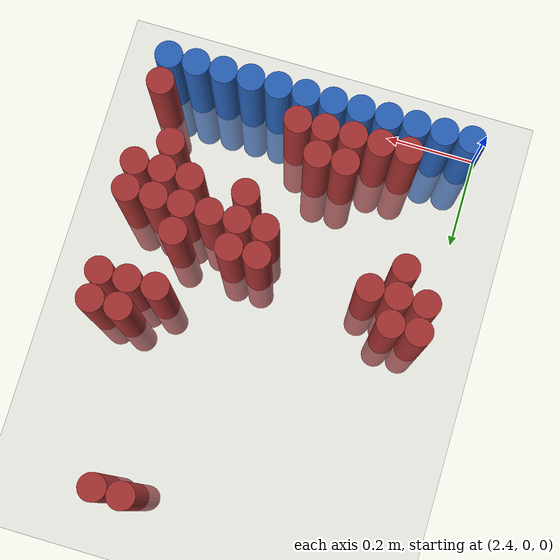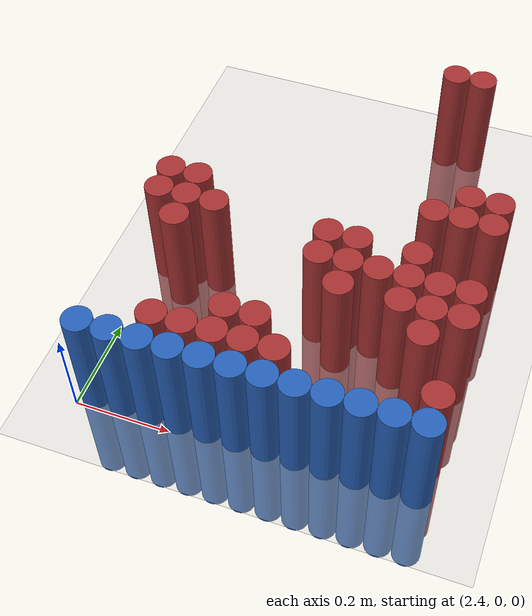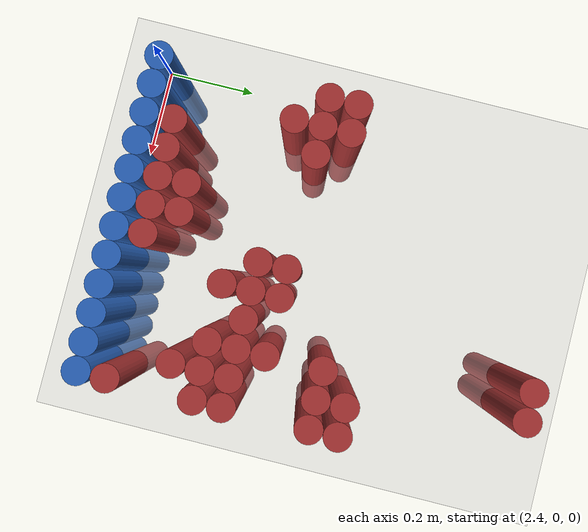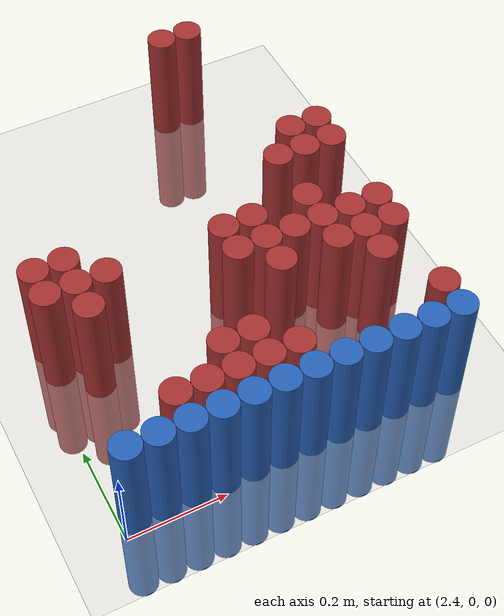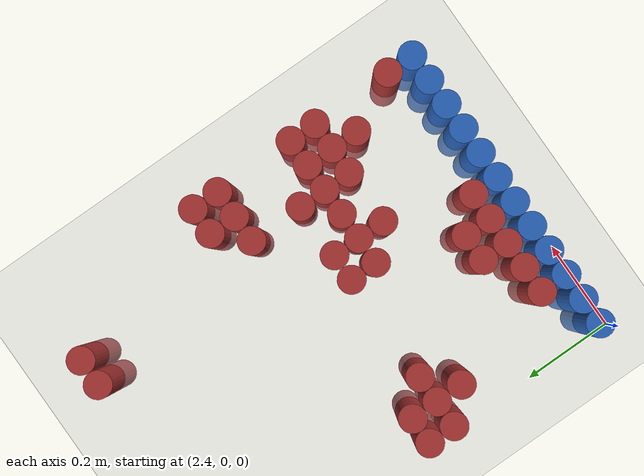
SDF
<sdf version="1.6">
 <world name="default">
  <model name="ground_plane">
   <static>1</static>
   <link name="link">
    <collision name="collision">
     <geometry><plane><normal>0 0 1</normal><size>100 100</size></plane></geometry>
     <surface><friction><ode><mu>100</mu><mu2>50</mu2></ode></friction></surface>
    </collision>
    <visual name="visual">
     <cast_shadows>0</cast_shadows>
     <geometry><plane><normal>0 0 1</normal><size>100 100</size></plane></geometry>
     <material>
      <script><uri>file://media/materials/scripts/gazebo.material</uri><name>Gazebo/Grey</name></script>
     </material>
    </visual>
   </link>
  </model>
  <model name="unit_cylinder_226">
   <static>1</static>
   <pose>2.910000 0.930000 0.000000 0.000000 0.000000 0.000000</pose>
   <link name="link">
    <inertial>
     <mass>1</mass>
     <inertia><ixx>0.145833</ixx><ixy>0</ixy><ixz>0</ixz><iyy>0.145833</iyy><iyz>0</iyz><izz>0.125</izz></inertia>
    </inertial>
    <collision name="collision">
     <geometry><cylinder><radius>0.030000</radius><length>0.5</length></cylinder></geometry>
    </collision>
    <visual name="visual">
     <geometry><cylinder><radius>0.030000</radius><length>0.5</length></cylinder></geometry>
     <material>
      <ambient>0.648000 0.192000 0.192000 1</ambient>
      <diffuse>0.648000 0.192000 0.192000 1</diffuse>
     </material>
     <material>
      <script><name>Gazebo/Grey</name><uri>file://media/materials/scripts/gazebo.material</uri></script>
     </material>
    </visual>
   </link>
  </model>
  <model name="unit_cylinder_227">
   <static>1</static>
   <pose>2.970000 0.930000 0.000000 0.000000 0.000000 0.000000</pose>
   <link name="link">
    <inertial>
     <mass>1</mass>
     <inertia><ixx>0.145833</ixx><ixy>0</ixy><ixz>0</ixz><iyy>0.145833</iyy><iyz>0</iyz><izz>0.125</izz></inertia>
    </inertial>
    <collision name="collision">
     <geometry><cylinder><radius>0.030000</radius><length>0.5</length></cylinder></geometry>
    </collision>
    <visual name="visual">
     <geometry><cylinder><radius>0.030000</radius><length>0.5</length></cylinder></geometry>
     <material>
      <ambient>0.648000 0.192000 0.192000 1</ambient>
      <diffuse>0.648000 0.192000 0.192000 1</diffuse>
     </material>
     <material>
      <script><name>Gazebo/Grey</name><uri>file://media/materials/scripts/gazebo.material</uri></script>
     </material>
    </visual>
   </link>
  </model>
  <model name="unit_cylinder_230">
   <static>1</static>
   <pose>3.030000 0.570000 0.000000 0.000000 0.000000 0.000000</pose>
   <link name="link">
    <inertial>
     <mass>1</mass>
     <inertia><ixx>0.145833</ixx><ixy>0</ixy><ixz>0</ixz><iyy>0.145833</iyy><iyz>0</iyz><izz>0.125</izz></inertia>
    </inertial>
    <collision name="collision">
     <geometry><cylinder><radius>0.030000</radius><length>0.5</length></cylinder></geometry>
    </collision>
    <visual name="visual">
     <geometry><cylinder><radius>0.030000</radius><length>0.5</length></cylinder></geometry>
     <material>
      <ambient>0.648000 0.192000 0.192000 1</ambient>
      <diffuse>0.648000 0.192000 0.192000 1</diffuse>
     </material>
     <material>
      <script><name>Gazebo/Grey</name><uri>file://media/materials/scripts/gazebo.material</uri></script>
     </material>
    </visual>
   </link>
  </model>
  <model name="unit_cylinder_231">
   <static>1</static>
   <pose>3.090000 0.570000 0.000000 0.000000 0.000000 0.000000</pose>
   <link name="link">
    <inertial>
     <mass>1</mass>
     <inertia><ixx>0.145833</ixx><ixy>0</ixy><ixz>0</ixz><iyy>0.145833</iyy><iyz>0</iyz><izz>0.125</izz></inertia>
    </inertial>
    <collision name="collision">
     <geometry><cylinder><radius>0.030000</radius><length>0.5</length></cylinder></geometry>
    </collision>
    <visual name="visual">
     <geometry><cylinder><radius>0.030000</radius><length>0.5</length></cylinder></geometry>
     <material>
      <ambient>0.648000 0.192000 0.192000 1</ambient>
      <diffuse>0.648000 0.192000 0.192000 1</diffuse>
     </material>
     <material>
      <script><name>Gazebo/Grey</name><uri>file://media/materials/scripts/gazebo.material</uri></script>
     </material>
    </visual>
   </link>
  </model>
  <model name="unit_cylinder_236">
   <static>1</static>
   <pose>2.970000 0.510000 0.000000 0.000000 0.000000 0.000000</pose>
   <link name="link">
    <inertial>
     <mass>1</mass>
     <inertia><ixx>0.145833</ixx><ixy>0</ixy><ixz>0</ixz><iyy>0.145833</iyy><iyz>0</iyz><izz>0.125</izz></inertia>
    </inertial>
    <collision name="collision">
     <geometry><cylinder><radius>0.030000</radius><length>0.5</length></cylinder></geometry>
    </collision>
    <visual name="visual">
     <geometry><cylinder><radius>0.030000</radius><length>0.5</length></cylinder></geometry>
     <material>
      <ambient>0.648000 0.192000 0.192000 1</ambient>
      <diffuse>0.648000 0.192000 0.192000 1</diffuse>
     </material>
     <material>
      <script><name>Gazebo/Grey</name><uri>file://media/materials/scripts/gazebo.material</uri></script>
     </material>
    </visual>
   </link>
  </model>
  <model name="unit_cylinder_237">
   <static>1</static>
   <pose>3.030000 0.510000 0.000000 0.000000 0.000000 0.000000</pose>
   <link name="link">
    <inertial>
     <mass>1</mass>
     <inertia><ixx>0.145833</ixx><ixy>0</ixy><ixz>0</ixz><iyy>0.145833</iyy><iyz>0</iyz><izz>0.125</izz></inertia>
    </inertial>
    <collision name="collision">
     <geometry><cylinder><radius>0.030000</radius><length>0.5</length></cylinder></geometry>
    </collision>
    <visual name="visual">
     <geometry><cylinder><radius>0.030000</radius><length>0.5</length></cylinder></geometry>
     <material>
      <ambient>0.648000 0.192000 0.192000 1</ambient>
      <diffuse>0.648000 0.192000 0.192000 1</diffuse>
     </material>
     <material>
      <script><name>Gazebo/Grey</name><uri>file://media/materials/scripts/gazebo.material</uri></script>
     </material>
    </visual>
   </link>
  </model>
  <model name="unit_cylinder_238">
   <static>1</static>
   <pose>3.090000 0.510000 0.000000 0.000000 0.000000 0.000000</pose>
   <link name="link">
    <inertial>
     <mass>1</mass>
     <inertia><ixx>0.145833</ixx><ixy>0</ixy><ixz>0</ixz><iyy>0.145833</iyy><iyz>0</iyz><izz>0.125</izz></inertia>
    </inertial>
    <collision name="collision">
     <geometry><cylinder><radius>0.030000</radius><length>0.5</length></cylinder></geometry>
    </collision>
    <visual name="visual">
     <geometry><cylinder><radius>0.030000</radius><length>0.5</length></cylinder></geometry>
     <material>
      <ambient>0.648000 0.192000 0.192000 1</ambient>
      <diffuse>0.648000 0.192000 0.192000 1</diffuse>
     </material>
     <material>
      <script><name>Gazebo/Grey</name><uri>file://media/materials/scripts/gazebo.material</uri></script>
     </material>
    </visual>
   </link>
  </model>
  <model name="unit_cylinder_245">
   <static>1</static>
   <pose>2.430000 0.450000 0.000000 0.000000 0.000000 0.000000</pose>
   <link name="link">
    <inertial>
     <mass>1</mass>
     <inertia><ixx>0.145833</ixx><ixy>0</ixy><ixz>0</ixz><iyy>0.145833</iyy><iyz>0</iyz><izz>0.125</izz></inertia>
    </inertial>
    <collision name="collision">
     <geometry><cylinder><radius>0.030000</radius><length>0.5</length></cylinder></geometry>
    </collision>
    <visual name="visual">
     <geometry><cylinder><radius>0.030000</radius><length>0.5</length></cylinder></geometry>
     <material>
      <ambient>0.648000 0.192000 0.192000 1</ambient>
      <diffuse>0.648000 0.192000 0.192000 1</diffuse>
     </material>
     <material>
      <script><name>Gazebo/Grey</name><uri>file://media/materials/scripts/gazebo.material</uri></script>
     </material>
    </visual>
   </link>
  </model>
  <model name="unit_cylinder_246">
   <static>1</static>
   <pose>2.490000 0.450000 0.000000 0.000000 0.000000 0.000000</pose>
   <link name="link">
    <inertial>
     <mass>1</mass>
     <inertia><ixx>0.145833</ixx><ixy>0</ixy><ixz>0</ixz><iyy>0.145833</iyy><iyz>0</iyz><izz>0.125</izz></inertia>
    </inertial>
    <collision name="collision">
     <geometry><cylinder><radius>0.030000</radius><length>0.5</length></cylinder></geometry>
    </collision>
    <visual name="visual">
     <geometry><cylinder><radius>0.030000</radius><length>0.5</length></cylinder></geometry>
     <material>
      <ambient>0.648000 0.192000 0.192000 1</ambient>
      <diffuse>0.648000 0.192000 0.192000 1</diffuse>
     </material>
     <material>
      <script><name>Gazebo/Grey</name><uri>file://media/materials/scripts/gazebo.material</uri></script>
     </material>
    </visual>
   </link>
  </model>
  <model name="unit_cylinder_252">
   <static>1</static>
   <pose>2.430000 0.390000 0.000000 0.000000 0.000000 0.000000</pose>
   <link name="link">
    <inertial>
     <mass>1</mass>
     <inertia><ixx>0.145833</ixx><ixy>0</ixy><ixz>0</ixz><iyy>0.145833</iyy><iyz>0</iyz><izz>0.125</izz></inertia>
    </inertial>
    <collision name="collision">
     <geometry><cylinder><radius>0.030000</radius><length>0.5</length></cylinder></geometry>
    </collision>
    <visual name="visual">
     <geometry><cylinder><radius>0.030000</radius><length>0.5</length></cylinder></geometry>
     <material>
      <ambient>0.648000 0.192000 0.192000 1</ambient>
      <diffuse>0.648000 0.192000 0.192000 1</diffuse>
     </material>
     <material>
      <script><name>Gazebo/Grey</name><uri>file://media/materials/scripts/gazebo.material</uri></script>
     </material>
    </visual>
   </link>
  </model>
  <model name="unit_cylinder_253">
   <static>1</static>
   <pose>2.490000 0.390000 0.000000 0.000000 0.000000 0.000000</pose>
   <link name="link">
    <inertial>
     <mass>1</mass>
     <inertia><ixx>0.145833</ixx><ixy>0</ixy><ixz>0</ixz><iyy>0.145833</iyy><iyz>0</iyz><izz>0.125</izz></inertia>
    </inertial>
    <collision name="collision">
     <geometry><cylinder><radius>0.030000</radius><length>0.5</length></cylinder></geometry>
    </collision>
    <visual name="visual">
     <geometry><cylinder><radius>0.030000</radius><length>0.5</length></cylinder></geometry>
     <material>
      <ambient>0.648000 0.192000 0.192000 1</ambient>
      <diffuse>0.648000 0.192000 0.192000 1</diffuse>
     </material>
     <material>
      <script><name>Gazebo/Grey</name><uri>file://media/materials/scripts/gazebo.material</uri></script>
     </material>
    </visual>
   </link>
  </model>
  <model name="unit_cylinder_254">
   <static>1</static>
   <pose>2.550000 0.390000 0.000000 0.000000 0.000000 0.000000</pose>
   <link name="link">
    <inertial>
     <mass>1</mass>
     <inertia><ixx>0.145833</ixx><ixy>0</ixy><ixz>0</ixz><iyy>0.145833</iyy><iyz>0</iyz><izz>0.125</izz></inertia>
    </inertial>
    <collision name="collision">
     <geometry><cylinder><radius>0.030000</radius><length>0.5</length></cylinder></geometry>
    </collision>
    <visual name="visual">
     <geometry><cylinder><radius>0.030000</radius><length>0.5</length></cylinder></geometry>
     <material>
      <ambient>0.648000 0.192000 0.192000 1</ambient>
      <diffuse>0.648000 0.192000 0.192000 1</diffuse>
     </material>
     <material>
      <script><name>Gazebo/Grey</name><uri>file://media/materials/scripts/gazebo.material</uri></script>
     </material>
    </visual>
   </link>
  </model>
  <model name="unit_cylinder_255">
   <static>1</static>
   <pose>2.790000 0.390000 0.000000 0.000000 0.000000 0.000000</pose>
   <link name="link">
    <inertial>
     <mass>1</mass>
     <inertia><ixx>0.145833</ixx><ixy>0</ixy><ixz>0</ixz><iyy>0.145833</iyy><iyz>0</iyz><izz>0.125</izz></inertia>
    </inertial>
    <collision name="collision">
     <geometry><cylinder><radius>0.030000</radius><length>0.5</length></cylinder></geometry>
    </collision>
    <visual name="visual">
     <geometry><cylinder><radius>0.030000</radius><length>0.5</length></cylinder></geometry>
     <material>
      <ambient>0.648000 0.192000 0.192000 1</ambient>
      <diffuse>0.648000 0.192000 0.192000 1</diffuse>
     </material>
     <material>
      <script><name>Gazebo/Grey</name><uri>file://media/materials/scripts/gazebo.material</uri></script>
     </material>
    </visual>
   </link>
  </model>
  <model name="unit_cylinder_256">
   <static>1</static>
   <pose>2.850000 0.390000 0.000000 0.000000 0.000000 0.000000</pose>
   <link name="link">
    <inertial>
     <mass>1</mass>
     <inertia><ixx>0.145833</ixx><ixy>0</ixy><ixz>0</ixz><iyy>0.145833</iyy><iyz>0</iyz><izz>0.125</izz></inertia>
    </inertial>
    <collision name="collision">
     <geometry><cylinder><radius>0.030000</radius><length>0.5</length></cylinder></geometry>
    </collision>
    <visual name="visual">
     <geometry><cylinder><radius>0.030000</radius><length>0.5</length></cylinder></geometry>
     <material>
      <ambient>0.648000 0.192000 0.192000 1</ambient>
      <diffuse>0.648000 0.192000 0.192000 1</diffuse>
     </material>
     <material>
      <script><name>Gazebo/Grey</name><uri>file://media/materials/scripts/gazebo.material</uri></script>
     </material>
    </visual>
   </link>
  </model>
  <model name="unit_cylinder_257">
   <static>1</static>
   <pose>2.970000 0.390000 0.000000 0.000000 0.000000 0.000000</pose>
   <link name="link">
    <inertial>
     <mass>1</mass>
     <inertia><ixx>0.145833</ixx><ixy>0</ixy><ixz>0</ixz><iyy>0.145833</iyy><iyz>0</iyz><izz>0.125</izz></inertia>
    </inertial>
    <collision name="collision">
     <geometry><cylinder><radius>0.030000</radius><length>0.5</length></cylinder></geometry>
    </collision>
    <visual name="visual">
     <geometry><cylinder><radius>0.030000</radius><length>0.5</length></cylinder></geometry>
     <material>
      <ambient>0.648000 0.192000 0.192000 1</ambient>
      <diffuse>0.648000 0.192000 0.192000 1</diffuse>
     </material>
     <material>
      <script><name>Gazebo/Grey</name><uri>file://media/materials/scripts/gazebo.material</uri></script>
     </material>
    </visual>
   </link>
  </model>
  <model name="unit_cylinder_263">
   <static>1</static>
   <pose>2.490000 0.330000 0.000000 0.000000 0.000000 0.000000</pose>
   <link name="link">
    <inertial>
     <mass>1</mass>
     <inertia><ixx>0.145833</ixx><ixy>0</ixy><ixz>0</ixz><iyy>0.145833</iyy><iyz>0</iyz><izz>0.125</izz></inertia>
    </inertial>
    <collision name="collision">
     <geometry><cylinder><radius>0.030000</radius><length>0.5</length></cylinder></geometry>
    </collision>
    <visual name="visual">
     <geometry><cylinder><radius>0.030000</radius><length>0.5</length></cylinder></geometry>
     <material>
      <ambient>0.648000 0.192000 0.192000 1</ambient>
      <diffuse>0.648000 0.192000 0.192000 1</diffuse>
     </material>
     <material>
      <script><name>Gazebo/Grey</name><uri>file://media/materials/scripts/gazebo.material</uri></script>
     </material>
    </visual>
   </link>
  </model>
  <model name="unit_cylinder_264">
   <static>1</static>
   <pose>2.790000 0.330000 0.000000 0.000000 0.000000 0.000000</pose>
   <link name="link">
    <inertial>
     <mass>1</mass>
     <inertia><ixx>0.145833</ixx><ixy>0</ixy><ixz>0</ixz><iyy>0.145833</iyy><iyz>0</iyz><izz>0.125</izz></inertia>
    </inertial>
    <collision name="collision">
     <geometry><cylinder><radius>0.030000</radius><length>0.5</length></cylinder></geometry>
    </collision>
    <visual name="visual">
     <geometry><cylinder><radius>0.030000</radius><length>0.5</length></cylinder></geometry>
     <material>
      <ambient>0.648000 0.192000 0.192000 1</ambient>
      <diffuse>0.648000 0.192000 0.192000 1</diffuse>
     </material>
     <material>
      <script><name>Gazebo/Grey</name><uri>file://media/materials/scripts/gazebo.material</uri></script>
     </material>
    </visual>
   </link>
  </model>
  <model name="unit_cylinder_265">
   <static>1</static>
   <pose>2.850000 0.330000 0.000000 0.000000 0.000000 0.000000</pose>
   <link name="link">
    <inertial>
     <mass>1</mass>
     <inertia><ixx>0.145833</ixx><ixy>0</ixy><ixz>0</ixz><iyy>0.145833</iyy><iyz>0</iyz><izz>0.125</izz></inertia>
    </inertial>
    <collision name="collision">
     <geometry><cylinder><radius>0.030000</radius><length>0.5</length></cylinder></geometry>
    </collision>
    <visual name="visual">
     <geometry><cylinder><radius>0.030000</radius><length>0.5</length></cylinder></geometry>
     <material>
      <ambient>0.648000 0.192000 0.192000 1</ambient>
      <diffuse>0.648000 0.192000 0.192000 1</diffuse>
     </material>
     <material>
      <script><name>Gazebo/Grey</name><uri>file://media/materials/scripts/gazebo.material</uri></script>
     </material>
    </visual>
   </link>
  </model>
  <model name="unit_cylinder_266">
   <static>1</static>
   <pose>2.910000 0.330000 0.000000 0.000000 0.000000 0.000000</pose>
   <link name="link">
    <inertial>
     <mass>1</mass>
     <inertia><ixx>0.145833</ixx><ixy>0</ixy><ixz>0</ixz><iyy>0.145833</iyy><iyz>0</iyz><izz>0.125</izz></inertia>
    </inertial>
    <collision name="collision">
     <geometry><cylinder><radius>0.030000</radius><length>0.5</length></cylinder></geometry>
    </collision>
    <visual name="visual">
     <geometry><cylinder><radius>0.030000</radius><length>0.5</length></cylinder></geometry>
     <material>
      <ambient>0.648000 0.192000 0.192000 1</ambient>
      <diffuse>0.648000 0.192000 0.192000 1</diffuse>
     </material>
     <material>
      <script><name>Gazebo/Grey</name><uri>file://media/materials/scripts/gazebo.material</uri></script>
     </material>
    </visual>
   </link>
  </model>
  <model name="unit_cylinder_267">
   <static>1</static>
   <pose>2.970000 0.330000 0.000000 0.000000 0.000000 0.000000</pose>
   <link name="link">
    <inertial>
     <mass>1</mass>
     <inertia><ixx>0.145833</ixx><ixy>0</ixy><ixz>0</ixz><iyy>0.145833</iyy><iyz>0</iyz><izz>0.125</izz></inertia>
    </inertial>
    <collision name="collision">
     <geometry><cylinder><radius>0.030000</radius><length>0.5</length></cylinder></geometry>
    </collision>
    <visual name="visual">
     <geometry><cylinder><radius>0.030000</radius><length>0.5</length></cylinder></geometry>
     <material>
      <ambient>0.648000 0.192000 0.192000 1</ambient>
      <diffuse>0.648000 0.192000 0.192000 1</diffuse>
     </material>
     <material>
      <script><name>Gazebo/Grey</name><uri>file://media/materials/scripts/gazebo.material</uri></script>
     </material>
    </visual>
   </link>
  </model>
  <model name="unit_cylinder_268">
   <static>1</static>
   <pose>3.030000 0.330000 0.000000 0.000000 0.000000 0.000000</pose>
   <link name="link">
    <inertial>
     <mass>1</mass>
     <inertia><ixx>0.145833</ixx><ixy>0</ixy><ixz>0</ixz><iyy>0.145833</iyy><iyz>0</iyz><izz>0.125</izz></inertia>
    </inertial>
    <collision name="collision">
     <geometry><cylinder><radius>0.030000</radius><length>0.5</length></cylinder></geometry>
    </collision>
    <visual name="visual">
     <geometry><cylinder><radius>0.030000</radius><length>0.5</length></cylinder></geometry>
     <material>
      <ambient>0.648000 0.192000 0.192000 1</ambient>
      <diffuse>0.648000 0.192000 0.192000 1</diffuse>
     </material>
     <material>
      <script><name>Gazebo/Grey</name><uri>file://media/materials/scripts/gazebo.material</uri></script>
     </material>
    </visual>
   </link>
  </model>
  <model name="unit_cylinder_269">
   <static>1</static>
   <pose>3.090000 0.330000 0.000000 0.000000 0.000000 0.000000</pose>
   <link name="link">
    <inertial>
     <mass>1</mass>
     <inertia><ixx>0.145833</ixx><ixy>0</ixy><ixz>0</ixz><iyy>0.145833</iyy><iyz>0</iyz><izz>0.125</izz></inertia>
    </inertial>
    <collision name="collision">
     <geometry><cylinder><radius>0.030000</radius><length>0.5</length></cylinder></geometry>
    </collision>
    <visual name="visual">
     <geometry><cylinder><radius>0.030000</radius><length>0.5</length></cylinder></geometry>
     <material>
      <ambient>0.648000 0.192000 0.192000 1</ambient>
      <diffuse>0.648000 0.192000 0.192000 1</diffuse>
     </material>
     <material>
      <script><name>Gazebo/Grey</name><uri>file://media/materials/scripts/gazebo.material</uri></script>
     </material>
    </visual>
   </link>
  </model>
  <model name="unit_cylinder_274">
   <static>1</static>
   <pose>2.850000 0.270000 0.000000 0.000000 0.000000 0.000000</pose>
   <link name="link">
    <inertial>
     <mass>1</mass>
     <inertia><ixx>0.145833</ixx><ixy>0</ixy><ixz>0</ixz><iyy>0.145833</iyy><iyz>0</iyz><izz>0.125</izz></inertia>
    </inertial>
    <collision name="collision">
     <geometry><cylinder><radius>0.030000</radius><length>0.5</length></cylinder></geometry>
    </collision>
    <visual name="visual">
     <geometry><cylinder><radius>0.030000</radius><length>0.5</length></cylinder></geometry>
     <material>
      <ambient>0.648000 0.192000 0.192000 1</ambient>
      <diffuse>0.648000 0.192000 0.192000 1</diffuse>
     </material>
     <material>
      <script><name>Gazebo/Grey</name><uri>file://media/materials/scripts/gazebo.material</uri></script>
     </material>
    </visual>
   </link>
  </model>
  <model name="unit_cylinder_275">
   <static>1</static>
   <pose>2.970000 0.270000 0.000000 0.000000 0.000000 0.000000</pose>
   <link name="link">
    <inertial>
     <mass>1</mass>
     <inertia><ixx>0.145833</ixx><ixy>0</ixy><ixz>0</ixz><iyy>0.145833</iyy><iyz>0</iyz><izz>0.125</izz></inertia>
    </inertial>
    <collision name="collision">
     <geometry><cylinder><radius>0.030000</radius><length>0.5</length></cylinder></geometry>
    </collision>
    <visual name="visual">
     <geometry><cylinder><radius>0.030000</radius><length>0.5</length></cylinder></geometry>
     <material>
      <ambient>0.648000 0.192000 0.192000 1</ambient>
      <diffuse>0.648000 0.192000 0.192000 1</diffuse>
     </material>
     <material>
      <script><name>Gazebo/Grey</name><uri>file://media/materials/scripts/gazebo.material</uri></script>
     </material>
    </visual>
   </link>
  </model>
  <model name="unit_cylinder_276">
   <static>1</static>
   <pose>3.030000 0.270000 0.000000 0.000000 0.000000 0.000000</pose>
   <link name="link">
    <inertial>
     <mass>1</mass>
     <inertia><ixx>0.145833</ixx><ixy>0</ixy><ixz>0</ixz><iyy>0.145833</iyy><iyz>0</iyz><izz>0.125</izz></inertia>
    </inertial>
    <collision name="collision">
     <geometry><cylinder><radius>0.030000</radius><length>0.5</length></cylinder></geometry>
    </collision>
    <visual name="visual">
     <geometry><cylinder><radius>0.030000</radius><length>0.5</length></cylinder></geometry>
     <material>
      <ambient>0.648000 0.192000 0.192000 1</ambient>
      <diffuse>0.648000 0.192000 0.192000 1</diffuse>
     </material>
     <material>
      <script><name>Gazebo/Grey</name><uri>file://media/materials/scripts/gazebo.material</uri></script>
     </material>
    </visual>
   </link>
  </model>
  <model name="unit_cylinder_277">
   <static>1</static>
   <pose>3.090000 0.270000 0.000000 0.000000 0.000000 0.000000</pose>
   <link name="link">
    <inertial>
     <mass>1</mass>
     <inertia><ixx>0.145833</ixx><ixy>0</ixy><ixz>0</ixz><iyy>0.145833</iyy><iyz>0</iyz><izz>0.125</izz></inertia>
    </inertial>
    <collision name="collision">
     <geometry><cylinder><radius>0.030000</radius><length>0.5</length></cylinder></geometry>
    </collision>
    <visual name="visual">
     <geometry><cylinder><radius>0.030000</radius><length>0.5</length></cylinder></geometry>
     <material>
      <ambient>0.648000 0.192000 0.192000 1</ambient>
      <diffuse>0.648000 0.192000 0.192000 1</diffuse>
     </material>
     <material>
      <script><name>Gazebo/Grey</name><uri>file://media/materials/scripts/gazebo.material</uri></script>
     </material>
    </visual>
   </link>
  </model>
  <model name="unit_cylinder_281">
   <static>1</static>
   <pose>3.030000 0.210000 0.000000 0.000000 0.000000 0.000000</pose>
   <link name="link">
    <inertial>
     <mass>1</mass>
     <inertia><ixx>0.145833</ixx><ixy>0</ixy><ixz>0</ixz><iyy>0.145833</iyy><iyz>0</iyz><izz>0.125</izz></inertia>
    </inertial>
    <collision name="collision">
     <geometry><cylinder><radius>0.030000</radius><length>0.5</length></cylinder></geometry>
    </collision>
    <visual name="visual">
     <geometry><cylinder><radius>0.030000</radius><length>0.5</length></cylinder></geometry>
     <material>
      <ambient>0.648000 0.192000 0.192000 1</ambient>
      <diffuse>0.648000 0.192000 0.192000 1</diffuse>
     </material>
     <material>
      <script><name>Gazebo/Grey</name><uri>file://media/materials/scripts/gazebo.material</uri></script>
     </material>
    </visual>
   </link>
  </model>
  <model name="unit_cylinder_284">
   <static>1</static>
   <pose>2.670000 0.150000 0.000000 0.000000 0.000000 0.000000</pose>
   <link name="link">
    <inertial>
     <mass>1</mass>
     <inertia><ixx>0.145833</ixx><ixy>0</ixy><ixz>0</ixz><iyy>0.145833</iyy><iyz>0</iyz><izz>0.125</izz></inertia>
    </inertial>
    <collision name="collision">
     <geometry><cylinder><radius>0.030000</radius><length>0.5</length></cylinder></geometry>
    </collision>
    <visual name="visual">
     <geometry><cylinder><radius>0.030000</radius><length>0.5</length></cylinder></geometry>
     <material>
      <ambient>0.648000 0.192000 0.192000 1</ambient>
      <diffuse>0.648000 0.192000 0.192000 1</diffuse>
     </material>
     <material>
      <script><name>Gazebo/Grey</name><uri>file://media/materials/scripts/gazebo.material</uri></script>
     </material>
    </visual>
   </link>
  </model>
  <model name="unit_cylinder_285">
   <static>1</static>
   <pose>2.730000 0.150000 0.000000 0.000000 0.000000 0.000000</pose>
   <link name="link">
    <inertial>
     <mass>1</mass>
     <inertia><ixx>0.145833</ixx><ixy>0</ixy><ixz>0</ixz><iyy>0.145833</iyy><iyz>0</iyz><izz>0.125</izz></inertia>
    </inertial>
    <collision name="collision">
     <geometry><cylinder><radius>0.030000</radius><length>0.5</length></cylinder></geometry>
    </collision>
    <visual name="visual">
     <geometry><cylinder><radius>0.030000</radius><length>0.5</length></cylinder></geometry>
     <material>
      <ambient>0.648000 0.192000 0.192000 1</ambient>
      <diffuse>0.648000 0.192000 0.192000 1</diffuse>
     </material>
     <material>
      <script><name>Gazebo/Grey</name><uri>file://media/materials/scripts/gazebo.material</uri></script>
     </material>
    </visual>
   </link>
  </model>
  <model name="unit_cylinder_290">
   <static>1</static>
   <pose>2.550000 0.090000 0.000000 0.000000 0.000000 0.000000</pose>
   <link name="link">
    <inertial>
     <mass>1</mass>
     <inertia><ixx>0.145833</ixx><ixy>0</ixy><ixz>0</ixz><iyy>0.145833</iyy><iyz>0</iyz><izz>0.125</izz></inertia>
    </inertial>
    <collision name="collision">
     <geometry><cylinder><radius>0.030000</radius><length>0.5</length></cylinder></geometry>
    </collision>
    <visual name="visual">
     <geometry><cylinder><radius>0.030000</radius><length>0.5</length></cylinder></geometry>
     <material>
      <ambient>0.648000 0.192000 0.192000 1</ambient>
      <diffuse>0.648000 0.192000 0.192000 1</diffuse>
     </material>
     <material>
      <script><name>Gazebo/Grey</name><uri>file://media/materials/scripts/gazebo.material</uri></script>
     </material>
    </visual>
   </link>
  </model>
  <model name="unit_cylinder_291">
   <static>1</static>
   <pose>2.610000 0.090000 0.000000 0.000000 0.000000 0.000000</pose>
   <link name="link">
    <inertial>
     <mass>1</mass>
     <inertia><ixx>0.145833</ixx><ixy>0</ixy><ixz>0</ixz><iyy>0.145833</iyy><iyz>0</iyz><izz>0.125</izz></inertia>
    </inertial>
    <collision name="collision">
     <geometry><cylinder><radius>0.030000</radius><length>0.5</length></cylinder></geometry>
    </collision>
    <visual name="visual">
     <geometry><cylinder><radius>0.030000</radius><length>0.5</length></cylinder></geometry>
     <material>
      <ambient>0.648000 0.192000 0.192000 1</ambient>
      <diffuse>0.648000 0.192000 0.192000 1</diffuse>
     </material>
     <material>
      <script><name>Gazebo/Grey</name><uri>file://media/materials/scripts/gazebo.material</uri></script>
     </material>
    </visual>
   </link>
  </model>
  <model name="unit_cylinder_292">
   <static>1</static>
   <pose>2.670000 0.090000 0.000000 0.000000 0.000000 0.000000</pose>
   <link name="link">
    <inertial>
     <mass>1</mass>
     <inertia><ixx>0.145833</ixx><ixy>0</ixy><ixz>0</ixz><iyy>0.145833</iyy><iyz>0</iyz><izz>0.125</izz></inertia>
    </inertial>
    <collision name="collision">
     <geometry><cylinder><radius>0.030000</radius><length>0.5</length></cylinder></geometry>
    </collision>
    <visual name="visual">
     <geometry><cylinder><radius>0.030000</radius><length>0.5</length></cylinder></geometry>
     <material>
      <ambient>0.648000 0.192000 0.192000 1</ambient>
      <diffuse>0.648000 0.192000 0.192000 1</diffuse>
     </material>
     <material>
      <script><name>Gazebo/Grey</name><uri>file://media/materials/scripts/gazebo.material</uri></script>
     </material>
    </visual>
   </link>
  </model>
  <model name="unit_cylinder_293">
   <static>1</static>
   <pose>2.730000 0.090000 0.000000 0.000000 0.000000 0.000000</pose>
   <link name="link">
    <inertial>
     <mass>1</mass>
     <inertia><ixx>0.145833</ixx><ixy>0</ixy><ixz>0</ixz><iyy>0.145833</iyy><iyz>0</iyz><izz>0.125</izz></inertia>
    </inertial>
    <collision name="collision">
     <geometry><cylinder><radius>0.030000</radius><length>0.5</length></cylinder></geometry>
    </collision>
    <visual name="visual">
     <geometry><cylinder><radius>0.030000</radius><length>0.5</length></cylinder></geometry>
     <material>
      <ambient>0.648000 0.192000 0.192000 1</ambient>
      <diffuse>0.648000 0.192000 0.192000 1</diffuse>
     </material>
     <material>
      <script><name>Gazebo/Grey</name><uri>file://media/materials/scripts/gazebo.material</uri></script>
     </material>
    </visual>
   </link>
  </model>
  <model name="unit_cylinder_294">
   <static>1</static>
   <pose>2.790000 0.090000 0.000000 0.000000 0.000000 0.000000</pose>
   <link name="link">
    <inertial>
     <mass>1</mass>
     <inertia><ixx>0.145833</ixx><ixy>0</ixy><ixz>0</ixz><iyy>0.145833</iyy><iyz>0</iyz><izz>0.125</izz></inertia>
    </inertial>
    <collision name="collision">
     <geometry><cylinder><radius>0.030000</radius><length>0.5</length></cylinder></geometry>
    </collision>
    <visual name="visual">
     <geometry><cylinder><radius>0.030000</radius><length>0.5</length></cylinder></geometry>
     <material>
      <ambient>0.648000 0.192000 0.192000 1</ambient>
      <diffuse>0.648000 0.192000 0.192000 1</diffuse>
     </material>
     <material>
      <script><name>Gazebo/Grey</name><uri>file://media/materials/scripts/gazebo.material</uri></script>
     </material>
    </visual>
   </link>
  </model>
  <model name="unit_cylinder_295">
   <static>1</static>
   <pose>3.090000 0.090000 0.000000 0.000000 0.000000 0.000000</pose>
   <link name="link">
    <inertial>
     <mass>1</mass>
     <inertia><ixx>0.145833</ixx><ixy>0</ixy><ixz>0</ixz><iyy>0.145833</iyy><iyz>0</iyz><izz>0.125</izz></inertia>
    </inertial>
    <collision name="collision">
     <geometry><cylinder><radius>0.030000</radius><length>0.5</length></cylinder></geometry>
    </collision>
    <visual name="visual">
     <geometry><cylinder><radius>0.030000</radius><length>0.5</length></cylinder></geometry>
     <material>
      <ambient>0.648000 0.192000 0.192000 1</ambient>
      <diffuse>0.648000 0.192000 0.192000 1</diffuse>
     </material>
     <material>
      <script><name>Gazebo/Grey</name><uri>file://media/materials/scripts/gazebo.material</uri></script>
     </material>
    </visual>
   </link>
  </model>
  <model name="unit_cylinder_308">
   <static>1</static>
   <pose>2.430000 0.030000 0.000000 0.000000 0.000000 0.000000</pose>
   <link name="link">
    <inertial>
     <mass>1</mass>
     <inertia><ixx>0.145833</ixx><ixy>0</ixy><ixz>0</ixz><iyy>0.145833</iyy><iyz>0</iyz><izz>0.125</izz></inertia>
    </inertial>
    <collision name="collision">
     <geometry><cylinder><radius>0.030000</radius><length>0.5</length></cylinder></geometry>
    </collision>
    <visual name="visual">
     <geometry><cylinder><radius>0.030000</radius><length>0.5</length></cylinder></geometry>
     <material>
      <ambient>0.152000 0.379000 0.720000 1</ambient>
      <diffuse>0.152000 0.379000 0.720000 1</diffuse>
     </material>
     <material>
      <script><name>Gazebo/Grey</name><uri>file://media/materials/scripts/gazebo.material</uri></script>
     </material>
    </visual>
   </link>
  </model>
  <model name="unit_cylinder_309">
   <static>1</static>
   <pose>2.490000 0.030000 0.000000 0.000000 0.000000 0.000000</pose>
   <link name="link">
    <inertial>
     <mass>1</mass>
     <inertia><ixx>0.145833</ixx><ixy>0</ixy><ixz>0</ixz><iyy>0.145833</iyy><iyz>0</iyz><izz>0.125</izz></inertia>
    </inertial>
    <collision name="collision">
     <geometry><cylinder><radius>0.030000</radius><length>0.5</length></cylinder></geometry>
    </collision>
    <visual name="visual">
     <geometry><cylinder><radius>0.030000</radius><length>0.5</length></cylinder></geometry>
     <material>
      <ambient>0.152000 0.379000 0.720000 1</ambient>
      <diffuse>0.152000 0.379000 0.720000 1</diffuse>
     </material>
     <material>
      <script><name>Gazebo/Grey</name><uri>file://media/materials/scripts/gazebo.material</uri></script>
     </material>
    </visual>
   </link>
  </model>
  <model name="unit_cylinder_310">
   <static>1</static>
   <pose>2.550000 0.030000 0.000000 0.000000 0.000000 0.000000</pose>
   <link name="link">
    <inertial>
     <mass>1</mass>
     <inertia><ixx>0.145833</ixx><ixy>0</ixy><ixz>0</ixz><iyy>0.145833</iyy><iyz>0</iyz><izz>0.125</izz></inertia>
    </inertial>
    <collision name="collision">
     <geometry><cylinder><radius>0.030000</radius><length>0.5</length></cylinder></geometry>
    </collision>
    <visual name="visual">
     <geometry><cylinder><radius>0.030000</radius><length>0.5</length></cylinder></geometry>
     <material>
      <ambient>0.152000 0.379000 0.720000 1</ambient>
      <diffuse>0.152000 0.379000 0.720000 1</diffuse>
     </material>
     <material>
      <script><name>Gazebo/Grey</name><uri>file://media/materials/scripts/gazebo.material</uri></script>
     </material>
    </visual>
   </link>
  </model>
  <model name="unit_cylinder_311">
   <static>1</static>
   <pose>2.610000 0.030000 0.000000 0.000000 0.000000 0.000000</pose>
   <link name="link">
    <inertial>
     <mass>1</mass>
     <inertia><ixx>0.145833</ixx><ixy>0</ixy><ixz>0</ixz><iyy>0.145833</iyy><iyz>0</iyz><izz>0.125</izz></inertia>
    </inertial>
    <collision name="collision">
     <geometry><cylinder><radius>0.030000</radius><length>0.5</length></cylinder></geometry>
    </collision>
    <visual name="visual">
     <geometry><cylinder><radius>0.030000</radius><length>0.5</length></cylinder></geometry>
     <material>
      <ambient>0.152000 0.379000 0.720000 1</ambient>
      <diffuse>0.152000 0.379000 0.720000 1</diffuse>
     </material>
     <material>
      <script><name>Gazebo/Grey</name><uri>file://media/materials/scripts/gazebo.material</uri></script>
     </material>
    </visual>
   </link>
  </model>
  <model name="unit_cylinder_312">
   <static>1</static>
   <pose>2.670000 0.030000 0.000000 0.000000 0.000000 0.000000</pose>
   <link name="link">
    <inertial>
     <mass>1</mass>
     <inertia><ixx>0.145833</ixx><ixy>0</ixy><ixz>0</ixz><iyy>0.145833</iyy><iyz>0</iyz><izz>0.125</izz></inertia>
    </inertial>
    <collision name="collision">
     <geometry><cylinder><radius>0.030000</radius><length>0.5</length></cylinder></geometry>
    </collision>
    <visual name="visual">
     <geometry><cylinder><radius>0.030000</radius><length>0.5</length></cylinder></geometry>
     <material>
      <ambient>0.152000 0.379000 0.720000 1</ambient>
      <diffuse>0.152000 0.379000 0.720000 1</diffuse>
     </material>
     <material>
      <script><name>Gazebo/Grey</name><uri>file://media/materials/scripts/gazebo.material</uri></script>
     </material>
    </visual>
   </link>
  </model>
  <model name="unit_cylinder_313">
   <static>1</static>
   <pose>2.730000 0.030000 0.000000 0.000000 0.000000 0.000000</pose>
   <link name="link">
    <inertial>
     <mass>1</mass>
     <inertia><ixx>0.145833</ixx><ixy>0</ixy><ixz>0</ixz><iyy>0.145833</iyy><iyz>0</iyz><izz>0.125</izz></inertia>
    </inertial>
    <collision name="collision">
     <geometry><cylinder><radius>0.030000</radius><length>0.5</length></cylinder></geometry>
    </collision>
    <visual name="visual">
     <geometry><cylinder><radius>0.030000</radius><length>0.5</length></cylinder></geometry>
     <material>
      <ambient>0.152000 0.379000 0.720000 1</ambient>
      <diffuse>0.152000 0.379000 0.720000 1</diffuse>
     </material>
     <material>
      <script><name>Gazebo/Grey</name><uri>file://media/materials/scripts/gazebo.material</uri></script>
     </material>
    </visual>
   </link>
  </model>
  <model name="unit_cylinder_314">
   <static>1</static>
   <pose>2.790000 0.030000 0.000000 0.000000 0.000000 0.000000</pose>
   <link name="link">
    <inertial>
     <mass>1</mass>
     <inertia><ixx>0.145833</ixx><ixy>0</ixy><ixz>0</ixz><iyy>0.145833</iyy><iyz>0</iyz><izz>0.125</izz></inertia>
    </inertial>
    <collision name="collision">
     <geometry><cylinder><radius>0.030000</radius><length>0.5</length></cylinder></geometry>
    </collision>
    <visual name="visual">
     <geometry><cylinder><radius>0.030000</radius><length>0.5</length></cylinder></geometry>
     <material>
      <ambient>0.152000 0.379000 0.720000 1</ambient>
      <diffuse>0.152000 0.379000 0.720000 1</diffuse>
     </material>
     <material>
      <script><name>Gazebo/Grey</name><uri>file://media/materials/scripts/gazebo.material</uri></script>
     </material>
    </visual>
   </link>
  </model>
  <model name="unit_cylinder_315">
   <static>1</static>
   <pose>2.850000 0.030000 0.000000 0.000000 0.000000 0.000000</pose>
   <link name="link">
    <inertial>
     <mass>1</mass>
     <inertia><ixx>0.145833</ixx><ixy>0</ixy><ixz>0</ixz><iyy>0.145833</iyy><iyz>0</iyz><izz>0.125</izz></inertia>
    </inertial>
    <collision name="collision">
     <geometry><cylinder><radius>0.030000</radius><length>0.5</length></cylinder></geometry>
    </collision>
    <visual name="visual">
     <geometry><cylinder><radius>0.030000</radius><length>0.5</length></cylinder></geometry>
     <material>
      <ambient>0.152000 0.379000 0.720000 1</ambient>
      <diffuse>0.152000 0.379000 0.720000 1</diffuse>
     </material>
     <material>
      <script><name>Gazebo/Grey</name><uri>file://media/materials/scripts/gazebo.material</uri></script>
     </material>
    </visual>
   </link>
  </model>
  <model name="unit_cylinder_316">
   <static>1</static>
   <pose>2.910000 0.030000 0.000000 0.000000 0.000000 0.000000</pose>
   <link name="link">
    <inertial>
     <mass>1</mass>
     <inertia><ixx>0.145833</ixx><ixy>0</ixy><ixz>0</ixz><iyy>0.145833</iyy><iyz>0</iyz><izz>0.125</izz></inertia>
    </inertial>
    <collision name="collision">
     <geometry><cylinder><radius>0.030000</radius><length>0.5</length></cylinder></geometry>
    </collision>
    <visual name="visual">
     <geometry><cylinder><radius>0.030000</radius><length>0.5</length></cylinder></geometry>
     <material>
      <ambient>0.152000 0.379000 0.720000 1</ambient>
      <diffuse>0.152000 0.379000 0.720000 1</diffuse>
     </material>
     <material>
      <script><name>Gazebo/Grey</name><uri>file://media/materials/scripts/gazebo.material</uri></script>
     </material>
    </visual>
   </link>
  </model>
  <model name="unit_cylinder_317">
   <static>1</static>
   <pose>2.970000 0.030000 0.000000 0.000000 0.000000 0.000000</pose>
   <link name="link">
    <inertial>
     <mass>1</mass>
     <inertia><ixx>0.145833</ixx><ixy>0</ixy><ixz>0</ixz><iyy>0.145833</iyy><iyz>0</iyz><izz>0.125</izz></inertia>
    </inertial>
    <collision name="collision">
     <geometry><cylinder><radius>0.030000</radius><length>0.5</length></cylinder></geometry>
    </collision>
    <visual name="visual">
     <geometry><cylinder><radius>0.030000</radius><length>0.5</length></cylinder></geometry>
     <material>
      <ambient>0.152000 0.379000 0.720000 1</ambient>
      <diffuse>0.152000 0.379000 0.720000 1</diffuse>
     </material>
     <material>
      <script><name>Gazebo/Grey</name><uri>file://media/materials/scripts/gazebo.material</uri></script>
     </material>
    </visual>
   </link>
  </model>
  <model name="unit_cylinder_318">
   <static>1</static>
   <pose>3.030000 0.030000 0.000000 0.000000 0.000000 0.000000</pose>
   <link name="link">
    <inertial>
     <mass>1</mass>
     <inertia><ixx>0.145833</ixx><ixy>0</ixy><ixz>0</ixz><iyy>0.145833</iyy><iyz>0</iyz><izz>0.125</izz></inertia>
    </inertial>
    <collision name="collision">
     <geometry><cylinder><radius>0.030000</radius><length>0.5</length></cylinder></geometry>
    </collision>
    <visual name="visual">
     <geometry><cylinder><radius>0.030000</radius><length>0.5</length></cylinder></geometry>
     <material>
      <ambient>0.152000 0.379000 0.720000 1</ambient>
      <diffuse>0.152000 0.379000 0.720000 1</diffuse>
     </material>
     <material>
      <script><name>Gazebo/Grey</name><uri>file://media/materials/scripts/gazebo.material</uri></script>
     </material>
    </visual>
   </link>
  </model>
  <model name="unit_cylinder_319">
   <static>1</static>
   <pose>3.090000 0.030000 0.000000 0.000000 0.000000 0.000000</pose>
   <link name="link">
    <inertial>
     <mass>1</mass>
     <inertia><ixx>0.145833</ixx><ixy>0</ixy><ixz>0</ixz><iyy>0.145833</iyy><iyz>0</iyz><izz>0.125</izz></inertia>
    </inertial>
    <collision name="collision">
     <geometry><cylinder><radius>0.030000</radius><length>0.5</length></cylinder></geometry>
    </collision>
    <visual name="visual">
     <geometry><cylinder><radius>0.030000</radius><length>0.5</length></cylinder></geometry>
     <material>
      <ambient>0.152000 0.379000 0.720000 1</ambient>
      <diffuse>0.152000 0.379000 0.720000 1</diffuse>
     </material>
     <material>
      <script><name>Gazebo/Grey</name><uri>file://media/materials/scripts/gazebo.material</uri></script>
     </material>
    </visual>
   </link>
  </model>
 </world>
</sdf>
